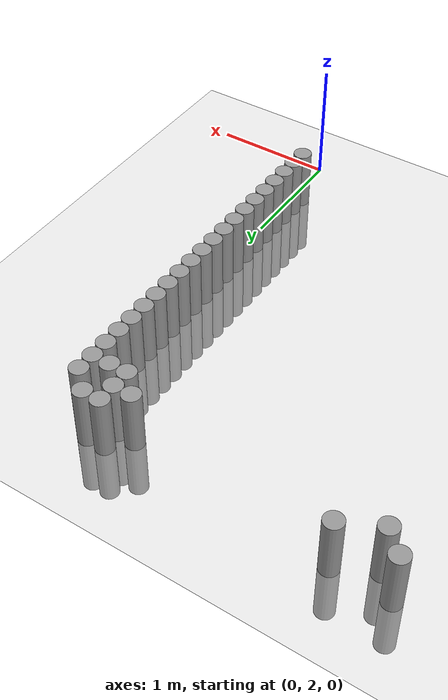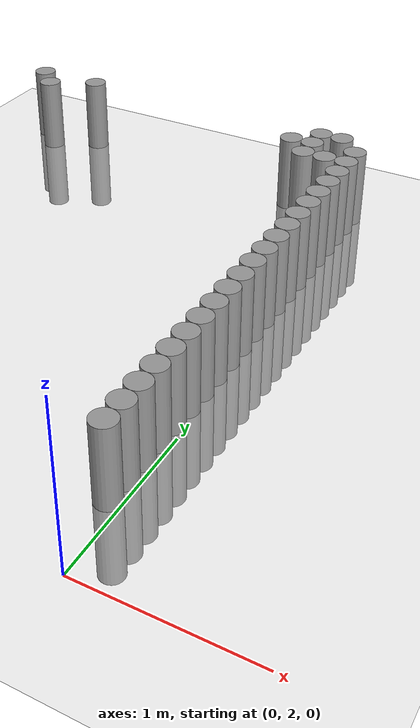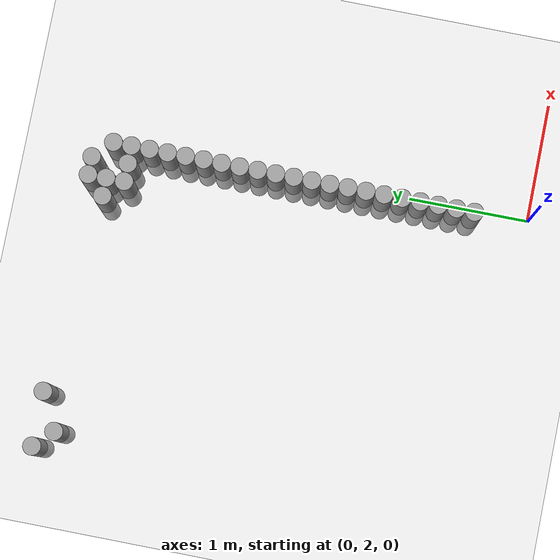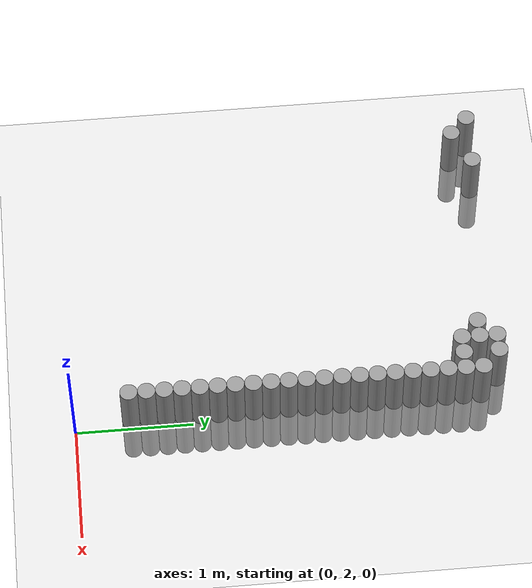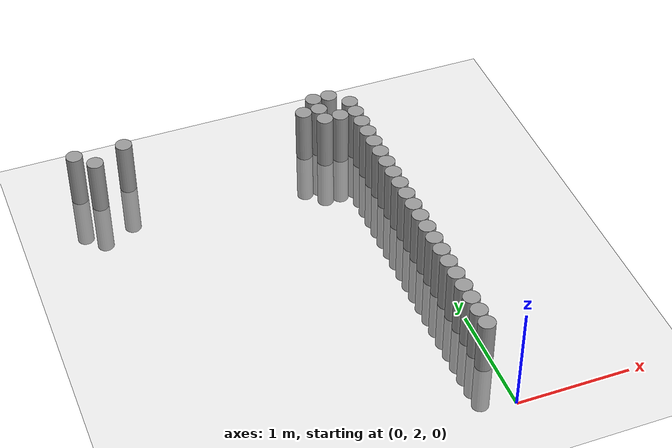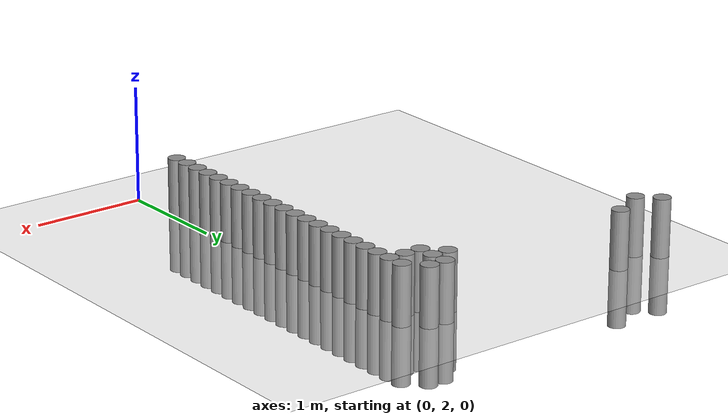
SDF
<sdf version="1.6">
 <world name="default">
  <model name="ground_plane">
   <static>1</static>
   <static>1</static>
   <link name="link">
    <collision name="collision">
     <geometry><plane><normal>0 0 1</normal><size>100 100</size></plane></geometry>
     <surface><friction><ode><mu>100</mu><mu2>50</mu2></ode></friction></surface>
    </collision>
    <visual name="visual">
     <cast_shadows>0</cast_shadows>
     <geometry><plane><normal>0 0 1</normal><size>100 100</size></plane></geometry>
     <material>
      <script><uri>file://media/materials/scripts/gazebo.material</uri><name>Gazebo/Grey</name></script>
     </material>
    </visual>
   </link>
  </model>
  <model name="unit_cylinder_60">
   <static>1</static>
   <pose>-0.075000 2.475000 0.000000 0.000000 0.000000 0.000000</pose>
   <link name="link">
    <inertial>
     <mass>1</mass>
     <inertia><ixx>0.145833</ixx><ixy>0</ixy><ixz>0</ixz><iyy>0.145833</iyy><iyz>0</iyz><izz>0.125</izz></inertia>
    </inertial>
    <collision name="collision">
     <geometry><cylinder><radius>0.075000</radius><length>1</length></cylinder></geometry>
    </collision>
    <visual name="visual">
     <geometry><cylinder><radius>0.075000</radius><length>1</length></cylinder></geometry>
     <material>
      <script><name>Gazebo/Grey</name><uri>file://media/materials/scripts/gazebo.material</uri></script>
     </material>
    </visual>
   </link>
  </model>
  <model name="unit_cylinder_62">
   <static>1</static>
   <pose>-0.075000 2.625000 0.000000 0.000000 0.000000 0.000000</pose>
   <link name="link">
    <inertial>
     <mass>1</mass>
     <inertia><ixx>0.145833</ixx><ixy>0</ixy><ixz>0</ixz><iyy>0.145833</iyy><iyz>0</iyz><izz>0.125</izz></inertia>
    </inertial>
    <collision name="collision">
     <geometry><cylinder><radius>0.075000</radius><length>1</length></cylinder></geometry>
    </collision>
    <visual name="visual">
     <geometry><cylinder><radius>0.075000</radius><length>1</length></cylinder></geometry>
     <material>
      <script><name>Gazebo/Grey</name><uri>file://media/materials/scripts/gazebo.material</uri></script>
     </material>
    </visual>
   </link>
  </model>
  <model name="unit_cylinder_64">
   <static>1</static>
   <pose>-0.075000 2.775000 0.000000 0.000000 0.000000 0.000000</pose>
   <link name="link">
    <inertial>
     <mass>1</mass>
     <inertia><ixx>0.145833</ixx><ixy>0</ixy><ixz>0</ixz><iyy>0.145833</iyy><iyz>0</iyz><izz>0.125</izz></inertia>
    </inertial>
    <collision name="collision">
     <geometry><cylinder><radius>0.075000</radius><length>1</length></cylinder></geometry>
    </collision>
    <visual name="visual">
     <geometry><cylinder><radius>0.075000</radius><length>1</length></cylinder></geometry>
     <material>
      <script><name>Gazebo/Grey</name><uri>file://media/materials/scripts/gazebo.material</uri></script>
     </material>
    </visual>
   </link>
  </model>
  <model name="unit_cylinder_66">
   <static>1</static>
   <pose>-0.075000 2.925000 0.000000 0.000000 0.000000 0.000000</pose>
   <link name="link">
    <inertial>
     <mass>1</mass>
     <inertia><ixx>0.145833</ixx><ixy>0</ixy><ixz>0</ixz><iyy>0.145833</iyy><iyz>0</iyz><izz>0.125</izz></inertia>
    </inertial>
    <collision name="collision">
     <geometry><cylinder><radius>0.075000</radius><length>1</length></cylinder></geometry>
    </collision>
    <visual name="visual">
     <geometry><cylinder><radius>0.075000</radius><length>1</length></cylinder></geometry>
     <material>
      <script><name>Gazebo/Grey</name><uri>file://media/materials/scripts/gazebo.material</uri></script>
     </material>
    </visual>
   </link>
  </model>
  <model name="unit_cylinder_68">
   <static>1</static>
   <pose>-0.075000 3.075000 0.000000 0.000000 0.000000 0.000000</pose>
   <link name="link">
    <inertial>
     <mass>1</mass>
     <inertia><ixx>0.145833</ixx><ixy>0</ixy><ixz>0</ixz><iyy>0.145833</iyy><iyz>0</iyz><izz>0.125</izz></inertia>
    </inertial>
    <collision name="collision">
     <geometry><cylinder><radius>0.075000</radius><length>1</length></cylinder></geometry>
    </collision>
    <visual name="visual">
     <geometry><cylinder><radius>0.075000</radius><length>1</length></cylinder></geometry>
     <material>
      <script><name>Gazebo/Grey</name><uri>file://media/materials/scripts/gazebo.material</uri></script>
     </material>
    </visual>
   </link>
  </model>
  <model name="unit_cylinder_70">
   <static>1</static>
   <pose>-0.075000 3.225000 0.000000 0.000000 0.000000 0.000000</pose>
   <link name="link">
    <inertial>
     <mass>1</mass>
     <inertia><ixx>0.145833</ixx><ixy>0</ixy><ixz>0</ixz><iyy>0.145833</iyy><iyz>0</iyz><izz>0.125</izz></inertia>
    </inertial>
    <collision name="collision">
     <geometry><cylinder><radius>0.075000</radius><length>1</length></cylinder></geometry>
    </collision>
    <visual name="visual">
     <geometry><cylinder><radius>0.075000</radius><length>1</length></cylinder></geometry>
     <material>
      <script><name>Gazebo/Grey</name><uri>file://media/materials/scripts/gazebo.material</uri></script>
     </material>
    </visual>
   </link>
  </model>
  <model name="unit_cylinder_72">
   <static>1</static>
   <pose>-0.075000 3.375000 0.000000 0.000000 0.000000 0.000000</pose>
   <link name="link">
    <inertial>
     <mass>1</mass>
     <inertia><ixx>0.145833</ixx><ixy>0</ixy><ixz>0</ixz><iyy>0.145833</iyy><iyz>0</iyz><izz>0.125</izz></inertia>
    </inertial>
    <collision name="collision">
     <geometry><cylinder><radius>0.075000</radius><length>1</length></cylinder></geometry>
    </collision>
    <visual name="visual">
     <geometry><cylinder><radius>0.075000</radius><length>1</length></cylinder></geometry>
     <material>
      <script><name>Gazebo/Grey</name><uri>file://media/materials/scripts/gazebo.material</uri></script>
     </material>
    </visual>
   </link>
  </model>
  <model name="unit_cylinder_74">
   <static>1</static>
   <pose>-0.075000 3.525000 0.000000 0.000000 0.000000 0.000000</pose>
   <link name="link">
    <inertial>
     <mass>1</mass>
     <inertia><ixx>0.145833</ixx><ixy>0</ixy><ixz>0</ixz><iyy>0.145833</iyy><iyz>0</iyz><izz>0.125</izz></inertia>
    </inertial>
    <collision name="collision">
     <geometry><cylinder><radius>0.075000</radius><length>1</length></cylinder></geometry>
    </collision>
    <visual name="visual">
     <geometry><cylinder><radius>0.075000</radius><length>1</length></cylinder></geometry>
     <material>
      <script><name>Gazebo/Grey</name><uri>file://media/materials/scripts/gazebo.material</uri></script>
     </material>
    </visual>
   </link>
  </model>
  <model name="unit_cylinder_76">
   <static>1</static>
   <pose>-0.075000 3.675000 0.000000 0.000000 0.000000 0.000000</pose>
   <link name="link">
    <inertial>
     <mass>1</mass>
     <inertia><ixx>0.145833</ixx><ixy>0</ixy><ixz>0</ixz><iyy>0.145833</iyy><iyz>0</iyz><izz>0.125</izz></inertia>
    </inertial>
    <collision name="collision">
     <geometry><cylinder><radius>0.075000</radius><length>1</length></cylinder></geometry>
    </collision>
    <visual name="visual">
     <geometry><cylinder><radius>0.075000</radius><length>1</length></cylinder></geometry>
     <material>
      <script><name>Gazebo/Grey</name><uri>file://media/materials/scripts/gazebo.material</uri></script>
     </material>
    </visual>
   </link>
  </model>
  <model name="unit_cylinder_78">
   <static>1</static>
   <pose>-0.075000 3.825000 0.000000 0.000000 0.000000 0.000000</pose>
   <link name="link">
    <inertial>
     <mass>1</mass>
     <inertia><ixx>0.145833</ixx><ixy>0</ixy><ixz>0</ixz><iyy>0.145833</iyy><iyz>0</iyz><izz>0.125</izz></inertia>
    </inertial>
    <collision name="collision">
     <geometry><cylinder><radius>0.075000</radius><length>1</length></cylinder></geometry>
    </collision>
    <visual name="visual">
     <geometry><cylinder><radius>0.075000</radius><length>1</length></cylinder></geometry>
     <material>
      <script><name>Gazebo/Grey</name><uri>file://media/materials/scripts/gazebo.material</uri></script>
     </material>
    </visual>
   </link>
  </model>
  <model name="unit_cylinder_80">
   <static>1</static>
   <pose>-0.075000 3.975000 0.000000 0.000000 0.000000 0.000000</pose>
   <link name="link">
    <inertial>
     <mass>1</mass>
     <inertia><ixx>0.145833</ixx><ixy>0</ixy><ixz>0</ixz><iyy>0.145833</iyy><iyz>0</iyz><izz>0.125</izz></inertia>
    </inertial>
    <collision name="collision">
     <geometry><cylinder><radius>0.075000</radius><length>1</length></cylinder></geometry>
    </collision>
    <visual name="visual">
     <geometry><cylinder><radius>0.075000</radius><length>1</length></cylinder></geometry>
     <material>
      <script><name>Gazebo/Grey</name><uri>file://media/materials/scripts/gazebo.material</uri></script>
     </material>
    </visual>
   </link>
  </model>
  <model name="unit_cylinder_82">
   <static>1</static>
   <pose>-0.075000 4.125000 0.000000 0.000000 0.000000 0.000000</pose>
   <link name="link">
    <inertial>
     <mass>1</mass>
     <inertia><ixx>0.145833</ixx><ixy>0</ixy><ixz>0</ixz><iyy>0.145833</iyy><iyz>0</iyz><izz>0.125</izz></inertia>
    </inertial>
    <collision name="collision">
     <geometry><cylinder><radius>0.075000</radius><length>1</length></cylinder></geometry>
    </collision>
    <visual name="visual">
     <geometry><cylinder><radius>0.075000</radius><length>1</length></cylinder></geometry>
     <material>
      <script><name>Gazebo/Grey</name><uri>file://media/materials/scripts/gazebo.material</uri></script>
     </material>
    </visual>
   </link>
  </model>
  <model name="unit_cylinder_84">
   <static>1</static>
   <pose>-0.075000 4.275000 0.000000 0.000000 0.000000 0.000000</pose>
   <link name="link">
    <inertial>
     <mass>1</mass>
     <inertia><ixx>0.145833</ixx><ixy>0</ixy><ixz>0</ixz><iyy>0.145833</iyy><iyz>0</iyz><izz>0.125</izz></inertia>
    </inertial>
    <collision name="collision">
     <geometry><cylinder><radius>0.075000</radius><length>1</length></cylinder></geometry>
    </collision>
    <visual name="visual">
     <geometry><cylinder><radius>0.075000</radius><length>1</length></cylinder></geometry>
     <material>
      <script><name>Gazebo/Grey</name><uri>file://media/materials/scripts/gazebo.material</uri></script>
     </material>
    </visual>
   </link>
  </model>
  <model name="unit_cylinder_86">
   <static>1</static>
   <pose>-0.075000 4.425000 0.000000 0.000000 0.000000 0.000000</pose>
   <link name="link">
    <inertial>
     <mass>1</mass>
     <inertia><ixx>0.145833</ixx><ixy>0</ixy><ixz>0</ixz><iyy>0.145833</iyy><iyz>0</iyz><izz>0.125</izz></inertia>
    </inertial>
    <collision name="collision">
     <geometry><cylinder><radius>0.075000</radius><length>1</length></cylinder></geometry>
    </collision>
    <visual name="visual">
     <geometry><cylinder><radius>0.075000</radius><length>1</length></cylinder></geometry>
     <material>
      <script><name>Gazebo/Grey</name><uri>file://media/materials/scripts/gazebo.material</uri></script>
     </material>
    </visual>
   </link>
  </model>
  <model name="unit_cylinder_88">
   <static>1</static>
   <pose>-0.075000 4.575000 0.000000 0.000000 0.000000 0.000000</pose>
   <link name="link">
    <inertial>
     <mass>1</mass>
     <inertia><ixx>0.145833</ixx><ixy>0</ixy><ixz>0</ixz><iyy>0.145833</iyy><iyz>0</iyz><izz>0.125</izz></inertia>
    </inertial>
    <collision name="collision">
     <geometry><cylinder><radius>0.075000</radius><length>1</length></cylinder></geometry>
    </collision>
    <visual name="visual">
     <geometry><cylinder><radius>0.075000</radius><length>1</length></cylinder></geometry>
     <material>
      <script><name>Gazebo/Grey</name><uri>file://media/materials/scripts/gazebo.material</uri></script>
     </material>
    </visual>
   </link>
  </model>
  <model name="unit_cylinder_90">
   <static>1</static>
   <pose>-0.075000 4.725000 0.000000 0.000000 0.000000 0.000000</pose>
   <link name="link">
    <inertial>
     <mass>1</mass>
     <inertia><ixx>0.145833</ixx><ixy>0</ixy><ixz>0</ixz><iyy>0.145833</iyy><iyz>0</iyz><izz>0.125</izz></inertia>
    </inertial>
    <collision name="collision">
     <geometry><cylinder><radius>0.075000</radius><length>1</length></cylinder></geometry>
    </collision>
    <visual name="visual">
     <geometry><cylinder><radius>0.075000</radius><length>1</length></cylinder></geometry>
     <material>
      <script><name>Gazebo/Grey</name><uri>file://media/materials/scripts/gazebo.material</uri></script>
     </material>
    </visual>
   </link>
  </model>
  <model name="unit_cylinder_92">
   <static>1</static>
   <pose>-0.075000 4.875000 0.000000 0.000000 0.000000 0.000000</pose>
   <link name="link">
    <inertial>
     <mass>1</mass>
     <inertia><ixx>0.145833</ixx><ixy>0</ixy><ixz>0</ixz><iyy>0.145833</iyy><iyz>0</iyz><izz>0.125</izz></inertia>
    </inertial>
    <collision name="collision">
     <geometry><cylinder><radius>0.075000</radius><length>1</length></cylinder></geometry>
    </collision>
    <visual name="visual">
     <geometry><cylinder><radius>0.075000</radius><length>1</length></cylinder></geometry>
     <material>
      <script><name>Gazebo/Grey</name><uri>file://media/materials/scripts/gazebo.material</uri></script>
     </material>
    </visual>
   </link>
  </model>
  <model name="unit_cylinder_94">
   <static>1</static>
   <pose>-0.075000 5.025000 0.000000 0.000000 0.000000 0.000000</pose>
   <link name="link">
    <inertial>
     <mass>1</mass>
     <inertia><ixx>0.145833</ixx><ixy>0</ixy><ixz>0</ixz><iyy>0.145833</iyy><iyz>0</iyz><izz>0.125</izz></inertia>
    </inertial>
    <collision name="collision">
     <geometry><cylinder><radius>0.075000</radius><length>1</length></cylinder></geometry>
    </collision>
    <visual name="visual">
     <geometry><cylinder><radius>0.075000</radius><length>1</length></cylinder></geometry>
     <material>
      <script><name>Gazebo/Grey</name><uri>file://media/materials/scripts/gazebo.material</uri></script>
     </material>
    </visual>
   </link>
  </model>
  <model name="unit_cylinder_164">
   <static>1</static>
   <pose>-2.625000 5.625000 0.000000 0.000000 0.000000 0.000000</pose>
   <link name="link">
    <inertial>
     <mass>1</mass>
     <inertia><ixx>0.145833</ixx><ixy>0</ixy><ixz>0</ixz><iyy>0.145833</iyy><iyz>0</iyz><izz>0.125</izz></inertia>
    </inertial>
    <collision name="collision">
     <geometry><cylinder><radius>0.075000</radius><length>1</length></cylinder></geometry>
    </collision>
    <visual name="visual">
     <geometry><cylinder><radius>0.075000</radius><length>1</length></cylinder></geometry>
     <material>
      <script><name>Gazebo/Grey</name><uri>file://media/materials/scripts/gazebo.material</uri></script>
     </material>
    </visual>
   </link>
  </model>
  <model name="unit_cylinder_165">
   <static>1</static>
   <pose>-2.475000 5.475000 0.000000 0.000000 0.000000 0.000000</pose>
   <link name="link">
    <inertial>
     <mass>1</mass>
     <inertia><ixx>0.145833</ixx><ixy>0</ixy><ixz>0</ixz><iyy>0.145833</iyy><iyz>0</iyz><izz>0.125</izz></inertia>
    </inertial>
    <collision name="collision">
     <geometry><cylinder><radius>0.075000</radius><length>1</length></cylinder></geometry>
    </collision>
    <visual name="visual">
     <geometry><cylinder><radius>0.075000</radius><length>1</length></cylinder></geometry>
     <material>
      <script><name>Gazebo/Grey</name><uri>file://media/materials/scripts/gazebo.material</uri></script>
     </material>
    </visual>
   </link>
  </model>
  <model name="unit_cylinder_173">
   <static>1</static>
   <pose>-2.175000 5.625000 0.000000 0.000000 0.000000 0.000000</pose>
   <link name="link">
    <inertial>
     <mass>1</mass>
     <inertia><ixx>0.145833</ixx><ixy>0</ixy><ixz>0</ixz><iyy>0.145833</iyy><iyz>0</iyz><izz>0.125</izz></inertia>
    </inertial>
    <collision name="collision">
     <geometry><cylinder><radius>0.075000</radius><length>1</length></cylinder></geometry>
    </collision>
    <visual name="visual">
     <geometry><cylinder><radius>0.075000</radius><length>1</length></cylinder></geometry>
     <material>
      <script><name>Gazebo/Grey</name><uri>file://media/materials/scripts/gazebo.material</uri></script>
     </material>
    </visual>
   </link>
  </model>
  <model name="unit_cylinder_192">
   <static>1</static>
   <pose>-0.525000 5.475000 0.000000 0.000000 0.000000 0.000000</pose>
   <link name="link">
    <inertial>
     <mass>1</mass>
     <inertia><ixx>0.145833</ixx><ixy>0</ixy><ixz>0</ixz><iyy>0.145833</iyy><iyz>0</iyz><izz>0.125</izz></inertia>
    </inertial>
    <collision name="collision">
     <geometry><cylinder><radius>0.075000</radius><length>1</length></cylinder></geometry>
    </collision>
    <visual name="visual">
     <geometry><cylinder><radius>0.075000</radius><length>1</length></cylinder></geometry>
     <material>
      <script><name>Gazebo/Grey</name><uri>file://media/materials/scripts/gazebo.material</uri></script>
     </material>
    </visual>
   </link>
  </model>
  <model name="unit_cylinder_195">
   <static>1</static>
   <pose>-0.375000 5.325000 0.000000 0.000000 0.000000 0.000000</pose>
   <link name="link">
    <inertial>
     <mass>1</mass>
     <inertia><ixx>0.145833</ixx><ixy>0</ixy><ixz>0</ixz><iyy>0.145833</iyy><iyz>0</iyz><izz>0.125</izz></inertia>
    </inertial>
    <collision name="collision">
     <geometry><cylinder><radius>0.075000</radius><length>1</length></cylinder></geometry>
    </collision>
    <visual name="visual">
     <geometry><cylinder><radius>0.075000</radius><length>1</length></cylinder></geometry>
     <material>
      <script><name>Gazebo/Grey</name><uri>file://media/materials/scripts/gazebo.material</uri></script>
     </material>
    </visual>
   </link>
  </model>
  <model name="unit_cylinder_196">
   <static>1</static>
   <pose>-0.375000 5.475000 0.000000 0.000000 0.000000 0.000000</pose>
   <link name="link">
    <inertial>
     <mass>1</mass>
     <inertia><ixx>0.145833</ixx><ixy>0</ixy><ixz>0</ixz><iyy>0.145833</iyy><iyz>0</iyz><izz>0.125</izz></inertia>
    </inertial>
    <collision name="collision">
     <geometry><cylinder><radius>0.075000</radius><length>1</length></cylinder></geometry>
    </collision>
    <visual name="visual">
     <geometry><cylinder><radius>0.075000</radius><length>1</length></cylinder></geometry>
     <material>
      <script><name>Gazebo/Grey</name><uri>file://media/materials/scripts/gazebo.material</uri></script>
     </material>
    </visual>
   </link>
  </model>
  <model name="unit_cylinder_197">
   <static>1</static>
   <pose>-0.375000 5.625000 0.000000 0.000000 0.000000 0.000000</pose>
   <link name="link">
    <inertial>
     <mass>1</mass>
     <inertia><ixx>0.145833</ixx><ixy>0</ixy><ixz>0</ixz><iyy>0.145833</iyy><iyz>0</iyz><izz>0.125</izz></inertia>
    </inertial>
    <collision name="collision">
     <geometry><cylinder><radius>0.075000</radius><length>1</length></cylinder></geometry>
    </collision>
    <visual name="visual">
     <geometry><cylinder><radius>0.075000</radius><length>1</length></cylinder></geometry>
     <material>
      <script><name>Gazebo/Grey</name><uri>file://media/materials/scripts/gazebo.material</uri></script>
     </material>
    </visual>
   </link>
  </model>
  <model name="unit_cylinder_198">
   <static>1</static>
   <pose>-0.225000 5.325000 0.000000 0.000000 0.000000 0.000000</pose>
   <link name="link">
    <inertial>
     <mass>1</mass>
     <inertia><ixx>0.145833</ixx><ixy>0</ixy><ixz>0</ixz><iyy>0.145833</iyy><iyz>0</iyz><izz>0.125</izz></inertia>
    </inertial>
    <collision name="collision">
     <geometry><cylinder><radius>0.075000</radius><length>1</length></cylinder></geometry>
    </collision>
    <visual name="visual">
     <geometry><cylinder><radius>0.075000</radius><length>1</length></cylinder></geometry>
     <material>
      <script><name>Gazebo/Grey</name><uri>file://media/materials/scripts/gazebo.material</uri></script>
     </material>
    </visual>
   </link>
  </model>
  <model name="unit_cylinder_199">
   <static>1</static>
   <pose>-0.225000 5.625000 0.000000 0.000000 0.000000 0.000000</pose>
   <link name="link">
    <inertial>
     <mass>1</mass>
     <inertia><ixx>0.145833</ixx><ixy>0</ixy><ixz>0</ixz><iyy>0.145833</iyy><iyz>0</iyz><izz>0.125</izz></inertia>
    </inertial>
    <collision name="collision">
     <geometry><cylinder><radius>0.075000</radius><length>1</length></cylinder></geometry>
    </collision>
    <visual name="visual">
     <geometry><cylinder><radius>0.075000</radius><length>1</length></cylinder></geometry>
     <material>
      <script><name>Gazebo/Grey</name><uri>file://media/materials/scripts/gazebo.material</uri></script>
     </material>
    </visual>
   </link>
  </model>
  <model name="unit_cylinder_207">
   <static>1</static>
   <pose>-0.075000 5.175000 0.000000 0.000000 0.000000 0.000000</pose>
   <link name="link">
    <inertial>
     <mass>1</mass>
     <inertia><ixx>0.145833</ixx><ixy>0</ixy><ixz>0</ixz><iyy>0.145833</iyy><iyz>0</iyz><izz>0.125</izz></inertia>
    </inertial>
    <collision name="collision">
     <geometry><cylinder><radius>0.075000</radius><length>1</length></cylinder></geometry>
    </collision>
    <visual name="visual">
     <geometry><cylinder><radius>0.075000</radius><length>1</length></cylinder></geometry>
     <material>
      <script><name>Gazebo/Grey</name><uri>file://media/materials/scripts/gazebo.material</uri></script>
     </material>
    </visual>
   </link>
  </model>
  <model name="unit_cylinder_208">
   <static>1</static>
   <pose>-0.075000 5.325000 0.000000 0.000000 0.000000 0.000000</pose>
   <link name="link">
    <inertial>
     <mass>1</mass>
     <inertia><ixx>0.145833</ixx><ixy>0</ixy><ixz>0</ixz><iyy>0.145833</iyy><iyz>0</iyz><izz>0.125</izz></inertia>
    </inertial>
    <collision name="collision">
     <geometry><cylinder><radius>0.075000</radius><length>1</length></cylinder></geometry>
    </collision>
    <visual name="visual">
     <geometry><cylinder><radius>0.075000</radius><length>1</length></cylinder></geometry>
     <material>
      <script><name>Gazebo/Grey</name><uri>file://media/materials/scripts/gazebo.material</uri></script>
     </material>
    </visual>
   </link>
  </model>
  <model name="unit_cylinder_209">
   <static>1</static>
   <pose>-0.075000 5.475000 0.000000 0.000000 0.000000 0.000000</pose>
   <link name="link">
    <inertial>
     <mass>1</mass>
     <inertia><ixx>0.145833</ixx><ixy>0</ixy><ixz>0</ixz><iyy>0.145833</iyy><iyz>0</iyz><izz>0.125</izz></inertia>
    </inertial>
    <collision name="collision">
     <geometry><cylinder><radius>0.075000</radius><length>1</length></cylinder></geometry>
    </collision>
    <visual name="visual">
     <geometry><cylinder><radius>0.075000</radius><length>1</length></cylinder></geometry>
     <material>
      <script><name>Gazebo/Grey</name><uri>file://media/materials/scripts/gazebo.material</uri></script>
     </material>
    </visual>
   </link>
  </model>
 </world>
</sdf>
